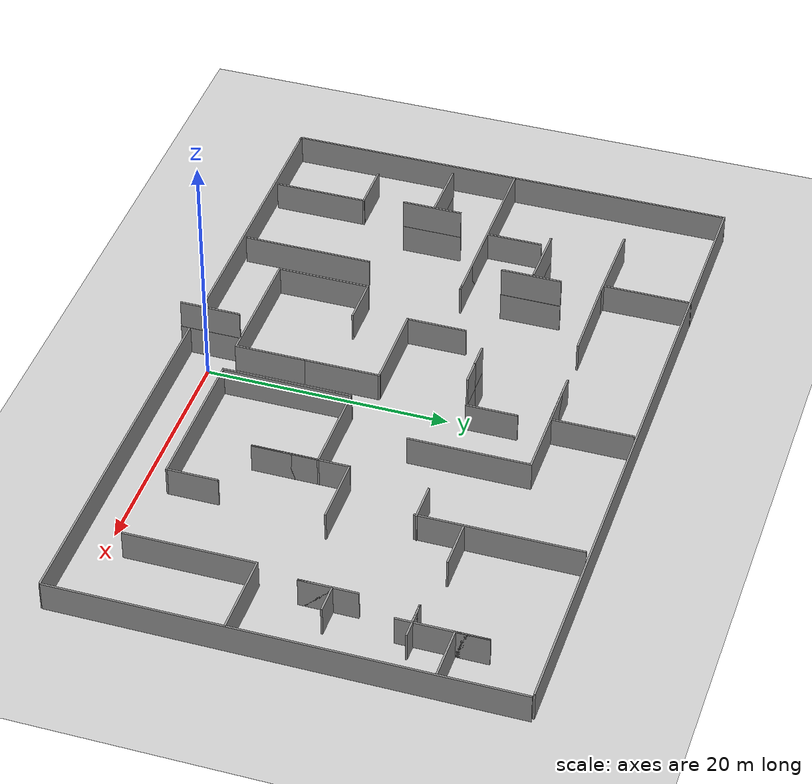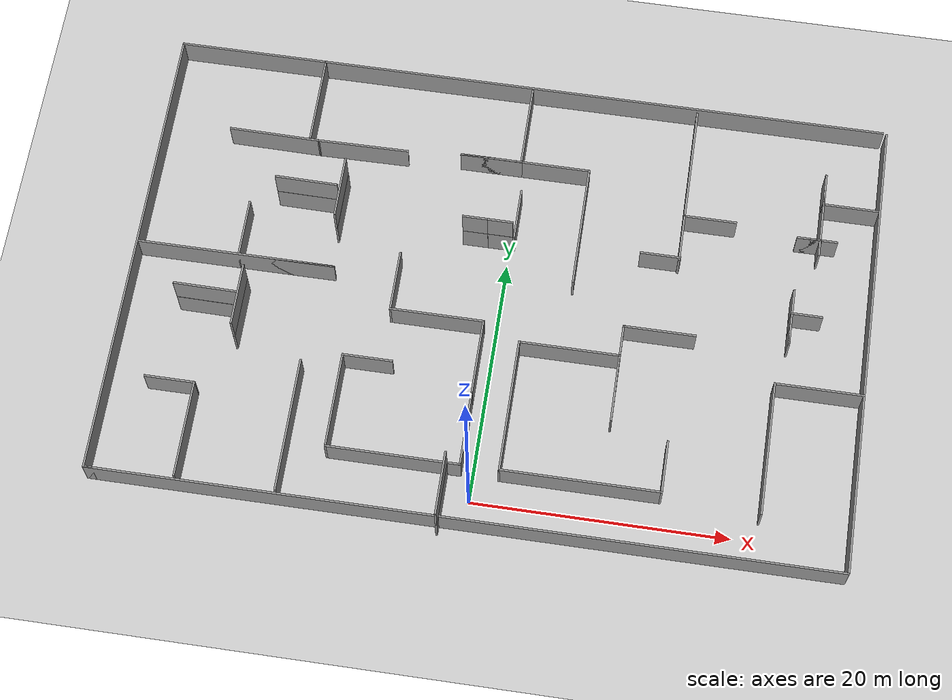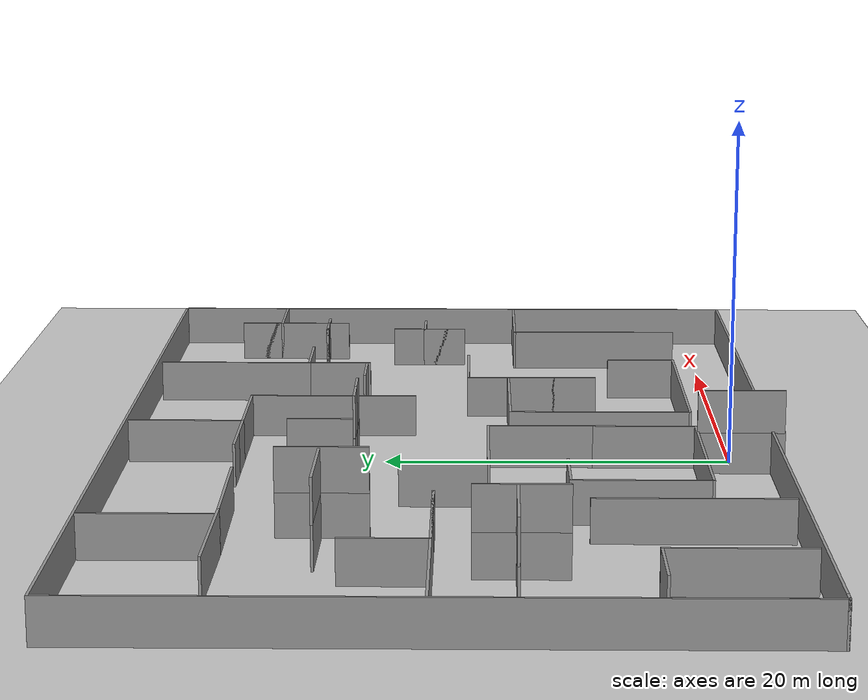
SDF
<sdf version="1.6">
 <world name="default">
  <model name="ground_plane">
   <static>1</static>
   <link name="link">
    <collision name="collision">
     <geometry><plane><normal>0 0 1</normal><size>100 100</size></plane></geometry>
     <surface><friction><ode><mu>100</mu><mu2>50</mu2></ode></friction></surface>
    </collision>
    <visual name="visual">
     <cast_shadows>0</cast_shadows>
     <geometry><plane><normal>0 0 1</normal><size>100 100</size></plane></geometry>
     <material>
      <script><uri>file://media/materials/scripts/gazebo.material</uri><name>Gazebo/Grey</name></script>
     </material>
    </visual>
   </link>
  </model>
  <model name="PaperTestRoom3">
   <pose>-0.1639 16.4774 0 0 -0 0</pose>
   <link name="Wall_12">
    <collision name="Wall_12_Collision">
     <geometry><box><size>7.36244 0.15 2.5</size></box></geometry>
     <pose>0 0 1.25 0 -0 0</pose>
    </collision>
    <visual name="Wall_12_Visual">
     <pose>0 0 1.25 0 -0 0</pose>
     <geometry><box><size>7.36244 0.15 2.5</size></box></geometry>
     <material>
      <script><uri>file://media/materials/scripts/gazebo.material</uri><name>Gazebo/Grey</name></script>
      <ambient>1 1 1 1</ambient>
     </material>
     <meta><layer>0</layer></meta>
    </visual>
    <pose>-19.953 11.4259 0 0 -0 -0.011282</pose>
   </link>
   <link name="Wall_16">
    <collision name="Wall_16_Collision">
     <geometry><box><size>7.75 0.15 2.5</size></box></geometry>
     <pose>0 0 1.25 0 -0 0</pose>
    </collision>
    <visual name="Wall_16_Visual">
     <pose>0 0 1.25 0 -0 0</pose>
     <geometry><box><size>7.75 0.15 2.5</size></box></geometry>
     <material>
      <script><uri>file://media/materials/scripts/gazebo.material</uri><name>Gazebo/Grey</name></script>
      <ambient>1 1 1 1</ambient>
     </material>
     <meta><layer>0</layer></meta>
    </visual>
    <pose>-22.0524 -14.5421 0 0 -0 1.5708</pose>
   </link>
   <link name="Wall_17">
    <collision name="Wall_17_Collision">
     <geometry><box><size>4 0.15 2.5</size></box></geometry>
     <pose>0 0 1.25 0 -0 0</pose>
    </collision>
    <visual name="Wall_17_Visual">
     <pose>0 0 1.25 0 -0 0</pose>
     <geometry><box><size>4 0.15 2.5</size></box></geometry>
     <material>
      <script><uri>file://media/materials/scripts/gazebo.material</uri><name>Gazebo/Grey</name></script>
      <ambient>1 1 1 1</ambient>
     </material>
     <meta><layer>0</layer></meta>
    </visual>
    <pose>-23.9774 -10.7421 0 0 -0 3.14159</pose>
   </link>
   <link name="Wall_19">
    <collision name="Wall_19_Collision">
     <geometry><box><size>10.75 0.15 2.5</size></box></geometry>
     <pose>0 0 1.25 0 -0 0</pose>
    </collision>
    <visual name="Wall_19_Visual">
     <pose>0 0 1.25 0 -0 0</pose>
     <geometry><box><size>10.75 0.15 2.5</size></box></geometry>
     <material>
      <script><uri>file://media/materials/scripts/gazebo.material</uri><name>Gazebo/Grey</name></script>
      <ambient>1 1 1 1</ambient>
     </material>
     <meta><layer>0</layer></meta>
    </visual>
    <pose>-14.3043 -13.0421 0 0 -0 1.5708</pose>
   </link>
   <link name="Wall_25">
    <collision name="Wall_25_Collision">
     <geometry><box><size>6 0.15 2.5</size></box></geometry>
     <pose>0 0 1.25 0 -0 0</pose>
    </collision>
    <visual name="Wall_25_Visual">
     <pose>0 0 1.25 0 -0 0</pose>
     <geometry><box><size>6 0.15 2.5</size></box></geometry>
     <material>
      <script><uri>file://media/materials/scripts/gazebo.material</uri><name>Gazebo/Grey</name></script>
      <ambient>1 1 1 1</ambient>
     </material>
     <meta><layer>0</layer></meta>
    </visual>
    <pose>-0.831101 -11.457 0 0 -0 1.5708</pose>
   </link>
   <link name="Wall_28">
    <collision name="Wall_28_Collision">
     <geometry><box><size>10.75 0.15 2.5</size></box></geometry>
     <pose>0 0 1.25 0 -0 0</pose>
    </collision>
    <visual name="Wall_28_Visual">
     <pose>0 0 1.25 0 -0 0</pose>
     <geometry><box><size>10.75 0.15 2.5</size></box></geometry>
     <material>
      <script><uri>file://media/materials/scripts/gazebo.material</uri><name>Gazebo/Grey</name></script>
      <ambient>1 1 1 1</ambient>
     </material>
     <meta><layer>0</layer></meta>
    </visual>
    <pose>2.16043 -9.0604 0 0 -0 1.5708</pose>
   </link>
   <link name="Wall_29">
    <collision name="Wall_29_Collision">
     <geometry><box><size>8 0.15 2.5</size></box></geometry>
     <pose>0 0 1.25 0 -0 0</pose>
    </collision>
    <visual name="Wall_29_Visual">
     <pose>0 0 1.25 0 -0 0</pose>
     <geometry><box><size>8 0.15 2.5</size></box></geometry>
     <material>
      <script><uri>file://media/materials/scripts/gazebo.material</uri><name>Gazebo/Grey</name></script>
      <ambient>1 1 1 1</ambient>
     </material>
     <meta><layer>0</layer></meta>
    </visual>
    <pose>6.08543 -3.7604 0 0 -0 0</pose>
   </link>
   <link name="Wall_30">
    <collision name="Wall_30_Collision">
     <geometry><box><size>5.5 0.15 2.5</size></box></geometry>
     <pose>0 0 1.25 0 -0 0</pose>
    </collision>
    <visual name="Wall_30_Visual">
     <pose>0 0 1.25 0 -0 0</pose>
     <geometry><box><size>5.5 0.15 2.5</size></box></geometry>
     <material>
      <script><uri>file://media/materials/scripts/gazebo.material</uri><name>Gazebo/Grey</name></script>
      <ambient>1 1 1 1</ambient>
     </material>
     <meta><layer>0</layer></meta>
    </visual>
    <pose>10.0104 -6.4354 0 0 -0 -1.5708</pose>
   </link>
   <link name="Wall_31">
    <collision name="Wall_31_Collision">
     <geometry><box><size>8 0.15 2.5</size></box></geometry>
     <pose>0 0 1.25 0 -0 0</pose>
    </collision>
    <visual name="Wall_31_Visual">
     <pose>0 0 1.25 0 -0 0</pose>
     <geometry><box><size>8 0.15 2.5</size></box></geometry>
     <material>
      <script><uri>file://media/materials/scripts/gazebo.material</uri><name>Gazebo/Grey</name></script>
      <ambient>1 1 1 1</ambient>
     </material>
     <meta><layer>0</layer></meta>
    </visual>
    <pose>10.0104 -5.1854 0 0 -0 1.5708</pose>
   </link>
   <link name="Wall_32">
    <collision name="Wall_32_Collision">
     <geometry><box><size>5.75 0.15 2.5</size></box></geometry>
     <pose>0 0 1.25 0 -0 0</pose>
    </collision>
    <visual name="Wall_32_Visual">
     <pose>0 0 1.25 0 -0 0</pose>
     <geometry><box><size>5.75 0.15 2.5</size></box></geometry>
     <material>
      <script><uri>file://media/materials/scripts/gazebo.material</uri><name>Gazebo/Grey</name></script>
      <ambient>1 1 1 1</ambient>
     </material>
     <meta><layer>0</layer></meta>
    </visual>
    <pose>12.8104 -1.2604 0 0 -0 0</pose>
   </link>
   <link name="Wall_34">
    <collision name="Wall_34_Collision">
     <geometry><box><size>12.5 0.15 2.5</size></box></geometry>
     <pose>0 0 1.25 0 -0 0</pose>
    </collision>
    <visual name="Wall_34_Visual">
     <pose>0 0 1.25 0 -0 0</pose>
     <geometry><box><size>12.5 0.15 2.5</size></box></geometry>
     <material>
      <script><uri>file://media/materials/scripts/gazebo.material</uri><name>Gazebo/Grey</name></script>
      <ambient>1 1 1 1</ambient>
     </material>
     <meta><layer>0</layer></meta>
    </visual>
    <pose>8.33543 -14.3604 0 0 -0 0</pose>
   </link>
   <link name="Wall_35">
    <collision name="Wall_35_Collision">
     <geometry><box><size>4.25 0.15 2.5</size></box></geometry>
     <pose>0 0 1.25 0 -0 0</pose>
    </collision>
    <visual name="Wall_35_Visual">
     <pose>0 0 1.25 0 -0 0</pose>
     <geometry><box><size>4.25 0.15 2.5</size></box></geometry>
     <material>
      <script><uri>file://media/materials/scripts/gazebo.material</uri><name>Gazebo/Grey</name></script>
      <ambient>1 1 1 1</ambient>
     </material>
     <meta><layer>0</layer></meta>
    </visual>
    <pose>14.5104 -12.3104 0 0 -0 1.5708</pose>
   </link>
   <link name="Wall_37">
    <collision name="Wall_37_Collision">
     <geometry><box><size>10.5 0.15 2.5</size></box></geometry>
     <pose>0 0 1.25 0 -0 0</pose>
    </collision>
    <visual name="Wall_37_Visual">
     <pose>0 0 1.25 0 -0 0</pose>
     <geometry><box><size>10.5 0.15 2.5</size></box></geometry>
     <material>
      <script><uri>file://media/materials/scripts/gazebo.material</uri><name>Gazebo/Grey</name></script>
      <ambient>1 1 1 1</ambient>
     </material>
     <meta><layer>0</layer></meta>
    </visual>
    <pose>-6.0061 -14.382 0 0 -0 3.14159</pose>
   </link>
   <link name="Wall_38">
    <collision name="Wall_38_Collision">
     <geometry><box><size>7.75 0.15 2.5</size></box></geometry>
     <pose>0 0 1.25 0 -0 0</pose>
    </collision>
    <visual name="Wall_38_Visual">
     <pose>0 0 1.25 0 -0 0</pose>
     <geometry><box><size>7.75 0.15 2.5</size></box></geometry>
     <material>
      <script><uri>file://media/materials/scripts/gazebo.material</uri><name>Gazebo/Grey</name></script>
      <ambient>1 1 1 1</ambient>
     </material>
     <meta><layer>0</layer></meta>
    </visual>
    <pose>-11.1811 -10.582 0 0 -0 1.5708</pose>
   </link>
   <link name="Wall_39">
    <collision name="Wall_39_Collision">
     <geometry><box><size>4 0.15 2.5</size></box></geometry>
     <pose>0 0 1.25 0 -0 0</pose>
    </collision>
    <visual name="Wall_39_Visual">
     <pose>0 0 1.25 0 -0 0</pose>
     <geometry><box><size>4 0.15 2.5</size></box></geometry>
     <material>
      <script><uri>file://media/materials/scripts/gazebo.material</uri><name>Gazebo/Grey</name></script>
      <ambient>1 1 1 1</ambient>
     </material>
     <meta><layer>0</layer></meta>
    </visual>
    <pose>-9.2561 -6.78202 0 0 -0 0</pose>
   </link>
   <link name="Wall_42">
    <collision name="Wall_42_Collision">
     <geometry><box><size>6.25 0.15 2.5</size></box></geometry>
     <pose>0 0 1.25 0 -0 0</pose>
    </collision>
    <visual name="Wall_42_Visual">
     <pose>0 0 1.25 0 -0 0</pose>
     <geometry><box><size>6.25 0.15 2.5</size></box></geometry>
     <material>
      <script><uri>file://media/materials/scripts/gazebo.material</uri><name>Gazebo/Grey</name></script>
      <ambient>1 1 1 1</ambient>
     </material>
     <meta><layer>0</layer></meta>
    </visual>
    <pose>-0.831101 -5.48202 0 0 -0 1.5708</pose>
   </link>
   <link name="Wall_43">
    <collision name="Wall_43_Collision">
     <geometry><box><size>7.5 0.15 2.5</size></box></geometry>
     <pose>0 0 1.25 0 -0 0</pose>
    </collision>
    <visual name="Wall_43_Visual">
     <pose>0 0 1.25 0 -0 0</pose>
     <geometry><box><size>7.5 0.15 2.5</size></box></geometry>
     <material>
      <script><uri>file://media/materials/scripts/gazebo.material</uri><name>Gazebo/Grey</name></script>
      <ambient>1 1 1 1</ambient>
     </material>
     <meta><layer>0</layer></meta>
    </visual>
    <pose>-4.5061 -2.43202 0 0 -0 3.14159</pose>
   </link>
   <link name="Wall_44">
    <collision name="Wall_44_Collision">
     <geometry><box><size>5 0.15 2.5</size></box></geometry>
     <pose>0 0 1.25 0 -0 0</pose>
    </collision>
    <visual name="Wall_44_Visual">
     <pose>0 0 1.25 0 -0 0</pose>
     <geometry><box><size>5 0.15 2.5</size></box></geometry>
     <material>
      <script><uri>file://media/materials/scripts/gazebo.material</uri><name>Gazebo/Grey</name></script>
      <ambient>1 1 1 1</ambient>
     </material>
     <meta><layer>0</layer></meta>
    </visual>
    <pose>-8.1811 -0.007024 0 0 -0 1.5708</pose>
   </link>
   <link name="Wall_47">
    <collision name="Wall_47_Collision">
     <geometry><box><size>37.25 0.15 2.5</size></box></geometry>
     <pose>0 0 1.25 0 -0 0</pose>
    </collision>
    <visual name="Wall_47_Visual">
     <pose>0 0 1.25 0 -0 0</pose>
     <geometry><box><size>37.25 0.15 2.5</size></box></geometry>
     <material>
      <script><uri>file://media/materials/scripts/gazebo.material</uri><name>Gazebo/Grey</name></script>
      <ambient>1 1 1 1</ambient>
     </material>
     <meta><layer>0</layer></meta>
    </visual>
    <pose>28.9541 -0.022609 0 0 -0 1.5708</pose>
   </link>
   <link name="Wall_49">
    <collision name="Wall_49_Collision">
     <geometry><box><size>7 0.15 2.5</size></box></geometry>
     <pose>0 0 1.25 0 -0 0</pose>
    </collision>
    <visual name="Wall_49_Visual">
     <pose>0 0 1.25 0 -0 0</pose>
     <geometry><box><size>7 0.15 2.5</size></box></geometry>
     <material>
      <script><uri>file://media/materials/scripts/gazebo.material</uri><name>Gazebo/Grey</name></script>
      <ambient>1 1 1 1</ambient>
     </material>
     <meta><layer>0</layer></meta>
    </visual>
    <pose>25.5161 -4.34601 0 0 -0 3.14159</pose>
   </link>
   <link name="Wall_5">
    <collision name="Wall_5_Collision">
     <geometry><box><size>0.75 0.15 2.5</size></box></geometry>
     <pose>0 0 1.25 0 -0 0</pose>
    </collision>
    <visual name="Wall_5_Visual">
     <pose>0 0 1.25 0 -0 0</pose>
     <geometry><box><size>0.75 0.15 2.5</size></box></geometry>
     <material>
      <script><uri>file://media/materials/scripts/gazebo.material</uri><name>Gazebo/Grey</name></script>
      <ambient>1 1 1 1</ambient>
     </material>
     <meta><layer>0</layer></meta>
    </visual>
    <pose>-28.6541 -18.6782 0 0 -0 3.14159</pose>
   </link>
   <link name="Wall_50">
    <collision name="Wall_50_Collision">
     <geometry><box><size>10.75 0.15 2.5</size></box></geometry>
     <pose>0 0 1.25 0 -0 0</pose>
    </collision>
    <visual name="Wall_50_Visual">
     <pose>0 0 1.25 0 -0 0</pose>
     <geometry><box><size>10.75 0.15 2.5</size></box></geometry>
     <material>
      <script><uri>file://media/materials/scripts/gazebo.material</uri><name>Gazebo/Grey</name></script>
      <ambient>1 1 1 1</ambient>
     </material>
     <meta><layer>0</layer></meta>
    </visual>
    <pose>22.0911 -9.64601 0 0 -0 -1.5708</pose>
   </link>
   <link name="Wall_52">
    <collision name="Wall_52_Collision">
     <geometry><box><size>4.5 0.15 2.5</size></box></geometry>
     <pose>0 0 1.25 0 -0 0</pose>
    </collision>
    <visual name="Wall_52_Visual">
     <pose>0 0 1.25 0 -0 0</pose>
     <geometry><box><size>4.5 0.15 2.5</size></box></geometry>
     <material>
      <script><uri>file://media/materials/scripts/gazebo.material</uri><name>Gazebo/Grey</name></script>
      <ambient>1 1 1 1</ambient>
     </material>
     <meta><layer>0</layer></meta>
    </visual>
    <pose>26.6525 11.5563 0 0 -0 3.14159</pose>
   </link>
   <link name="Wall_53">
    <collision name="Wall_53_Collision">
     <geometry><box><size>2.75 0.15 2.5</size></box></geometry>
     <pose>0 0 1.25 0 -0 0</pose>
    </collision>
    <visual name="Wall_53_Visual">
     <pose>0 0 1.25 0 -0 0</pose>
     <geometry><box><size>2.75 0.15 2.5</size></box></geometry>
     <material>
      <script><uri>file://media/materials/scripts/gazebo.material</uri><name>Gazebo/Grey</name></script>
      <ambient>1 1 1 1</ambient>
     </material>
     <meta><layer>0</layer></meta>
    </visual>
    <pose>24.4775 12.8563 0 0 -0 1.5708</pose>
   </link>
   <link name="Wall_54">
    <collision name="Wall_54_Collision">
     <geometry><box><size>7.25 0.15 2.5</size></box></geometry>
     <pose>0 0 1.25 0 -0 0</pose>
    </collision>
    <visual name="Wall_54_Visual">
     <pose>0 0 1.25 0 -0 0</pose>
     <geometry><box><size>7.25 0.15 2.5</size></box></geometry>
     <material>
      <script><uri>file://media/materials/scripts/gazebo.material</uri><name>Gazebo/Grey</name></script>
      <ambient>1 1 1 1</ambient>
     </material>
     <meta><layer>0</layer></meta>
    </visual>
    <pose>24.4775 10.6063 0 0 -0 -1.5708</pose>
   </link>
   <link name="Wall_57">
    <collision name="Wall_57_Collision">
     <geometry><box><size>2 0.15 2.5</size></box></geometry>
     <pose>0 0 1.25 0 -0 0</pose>
    </collision>
    <visual name="Wall_57_Visual">
     <pose>0 0 1.25 0 -0 0</pose>
     <geometry><box><size>2 0.15 2.5</size></box></geometry>
     <material>
      <script><uri>file://media/materials/scripts/gazebo.material</uri><name>Gazebo/Grey</name></script>
      <ambient>1 1 1 1</ambient>
     </material>
     <meta><layer>0</layer></meta>
    </visual>
    <pose>23.6283 8.34759 0 0 -0 3.14159</pose>
   </link>
   <link name="Wall_58">
    <collision name="Wall_58_Collision">
     <geometry><box><size>3.25 0.15 2.5</size></box></geometry>
     <pose>0 0 1.25 0 -0 0</pose>
    </collision>
    <visual name="Wall_58_Visual">
     <pose>0 0 1.25 0 -0 0</pose>
     <geometry><box><size>3.25 0.15 2.5</size></box></geometry>
     <material>
      <script><uri>file://media/materials/scripts/gazebo.material</uri><name>Gazebo/Grey</name></script>
      <ambient>1 1 1 1</ambient>
     </material>
     <meta><layer>0</layer></meta>
    </visual>
    <pose>24.2533 8.34759 0 0 -0 0</pose>
   </link>
   <link name="Wall_6">
    <collision name="Wall_6_Collision">
     <geometry><box><size>37.5 0.15 2.5</size></box></geometry>
     <pose>0 0 1.25 0 -0 0</pose>
    </collision>
    <visual name="Wall_6_Visual">
     <pose>0 0 1.25 0 -0 0</pose>
     <geometry><box><size>37.5 0.15 2.5</size></box></geometry>
     <material>
      <script><uri>file://media/materials/scripts/gazebo.material</uri><name>Gazebo/Grey</name></script>
      <ambient>1 1 1 1</ambient>
     </material>
     <meta><layer>0</layer></meta>
    </visual>
    <pose>-28.9541 -0.003198 0 0 -0 1.5708</pose>
   </link>
   <link name="Wall_60">
    <collision name="Wall_60_Collision">
     <geometry><box><size>9.5 0.15 2.5</size></box></geometry>
     <pose>0 0 1.25 0 -0 0</pose>
    </collision>
    <visual name="Wall_60_Visual">
     <pose>0 0 1.25 0 -0 0</pose>
     <geometry><box><size>9.5 0.15 2.5</size></box></geometry>
     <material>
      <script><uri>file://media/materials/scripts/gazebo.material</uri><name>Gazebo/Grey</name></script>
      <ambient>1 1 1 1</ambient>
     </material>
     <meta><layer>0</layer></meta>
    </visual>
    <pose>13.6263 13.5981 0 0 -0 -1.5708</pose>
   </link>
   <link name="Wall_61">
    <collision name="Wall_61_Collision">
     <geometry><box><size>4.25 0.15 2.5</size></box></geometry>
     <pose>0 0 1.25 0 -0 0</pose>
    </collision>
    <visual name="Wall_61_Visual">
     <pose>0 0 1.25 0 -0 0</pose>
     <geometry><box><size>4.25 0.15 2.5</size></box></geometry>
     <material>
      <script><uri>file://media/materials/scripts/gazebo.material</uri><name>Gazebo/Grey</name></script>
      <ambient>1 1 1 1</ambient>
     </material>
     <meta><layer>0</layer></meta>
    </visual>
    <pose>15.6763 8.92306 0 0 -0 0</pose>
   </link>
   <link name="Wall_64">
    <collision name="Wall_64_Collision">
     <geometry><box><size>6.75 0.15 2.5</size></box></geometry>
     <pose>0 0 1.25 0 -0 0</pose>
    </collision>
    <visual name="Wall_64_Visual">
     <pose>0 0 1.25 0 -0 0</pose>
     <geometry><box><size>6.75 0.15 2.5</size></box></geometry>
     <material>
      <script><uri>file://media/materials/scripts/gazebo.material</uri><name>Gazebo/Grey</name></script>
      <ambient>1 1 1 1</ambient>
     </material>
     <meta><layer>0</layer></meta>
    </visual>
    <pose>0.10616 15.1154 0 0 -0 -1.5708</pose>
   </link>
   <link name="Wall_65">
    <collision name="Wall_65_Collision">
     <geometry><box><size>5 0.15 2.5</size></box></geometry>
     <pose>0 0 1.25 0 -0 0</pose>
    </collision>
    <visual name="Wall_65_Visual">
     <pose>0 0 1.25 0 -0 0</pose>
     <geometry><box><size>5 0.15 2.5</size></box></geometry>
     <material>
      <script><uri>file://media/materials/scripts/gazebo.material</uri><name>Gazebo/Grey</name></script>
      <ambient>1 1 1 1</ambient>
     </material>
     <meta><layer>0</layer></meta>
    </visual>
    <pose>-2.31884 11.8154 0 0 -0 3.14159</pose>
   </link>
   <link name="Wall_66">
    <collision name="Wall_66_Collision">
     <geometry><box><size>10.5 0.15 2.5</size></box></geometry>
     <pose>0 0 1.25 0 -0 0</pose>
    </collision>
    <visual name="Wall_66_Visual">
     <pose>0 0 1.25 0 -0 0</pose>
     <geometry><box><size>10.5 0.15 2.5</size></box></geometry>
     <material>
      <script><uri>file://media/materials/scripts/gazebo.material</uri><name>Gazebo/Grey</name></script>
      <ambient>1 1 1 1</ambient>
     </material>
     <meta><layer>0</layer></meta>
    </visual>
    <pose>0.431161 11.8154 0 0 -0 0</pose>
   </link>
   <link name="Wall_67">
    <collision name="Wall_67_Collision">
     <geometry><box><size>10 0.15 2.5</size></box></geometry>
     <pose>0 0 1.25 0 -0 0</pose>
    </collision>
    <visual name="Wall_67_Visual">
     <pose>0 0 1.25 0 -0 0</pose>
     <geometry><box><size>10 0.15 2.5</size></box></geometry>
     <material>
      <script><uri>file://media/materials/scripts/gazebo.material</uri><name>Gazebo/Grey</name></script>
      <ambient>1 1 1 1</ambient>
     </material>
     <meta><layer>0</layer></meta>
    </visual>
    <pose>5.60616 6.89038 0 0 -0 -1.5708</pose>
   </link>
   <link name="Wall_69">
    <collision name="Wall_69_Collision">
     <geometry><box><size>15.75 0.15 2.5</size></box></geometry>
     <pose>0 0 1.25 0 -0 0</pose>
    </collision>
    <visual name="Wall_69_Visual">
     <pose>0 0 1.25 0 -0 0</pose>
     <geometry><box><size>15.75 0.15 2.5</size></box></geometry>
     <material>
      <script><uri>file://media/materials/scripts/gazebo.material</uri><name>Gazebo/Grey</name></script>
      <ambient>1 1 1 1</ambient>
     </material>
     <meta><layer>0</layer></meta>
    </visual>
    <pose>-20.9843 0.483346 0 0 -0 0</pose>
   </link>
   <link name="Wall_70">
    <collision name="Wall_70_Collision">
     <geometry><box><size>7.75 0.15 2.5</size></box></geometry>
     <pose>0 0 1.25 0 -0 0</pose>
    </collision>
    <visual name="Wall_70_Visual">
     <pose>0 0 1.25 0 -0 0</pose>
     <geometry><box><size>7.75 0.15 2.5</size></box></geometry>
     <material>
      <script><uri>file://media/materials/scripts/gazebo.material</uri><name>Gazebo/Grey</name></script>
      <ambient>1 1 1 1</ambient>
     </material>
     <meta><layer>0</layer></meta>
    </visual>
    <pose>-16.9843 0.483346 0 0 -0 3.14159</pose>
   </link>
   <link name="Wall_71">
    <collision name="Wall_71_Collision">
     <geometry><box><size>4.75 0.15 2.5</size></box></geometry>
     <pose>0 0 1.25 0 -0 0</pose>
    </collision>
    <visual name="Wall_71_Visual">
     <pose>0 0 1.25 0 -0 0</pose>
     <geometry><box><size>4.75 0.15 2.5</size></box></geometry>
     <material>
      <script><uri>file://media/materials/scripts/gazebo.material</uri><name>Gazebo/Grey</name></script>
      <ambient>1 1 1 1</ambient>
     </material>
     <meta><layer>0</layer></meta>
    </visual>
    <pose>-20.7843 2.78335 0 0 -0 1.5708</pose>
   </link>
   <link name="Wall_73">
    <collision name="Wall_73_Collision">
     <geometry><box><size>58 0.15 2.5</size></box></geometry>
     <pose>0 0 1.25 0 -0 0</pose>
    </collision>
    <visual name="Wall_73_Visual">
     <pose>0 0 1.25 0 -0 0</pose>
     <geometry><box><size>58 0.15 2.5</size></box></geometry>
     <material>
      <script><uri>file://media/materials/scripts/gazebo.material</uri><name>Gazebo/Grey</name></script>
      <ambient>1 1 1 1</ambient>
     </material>
     <meta><layer>0</layer></meta>
    </visual>
    <pose>-0.029105 -18.6782 0 0 -0 0</pose>
   </link>
   <link name="Wall_75">
    <collision name="Wall_75_Collision">
     <geometry><box><size>57.75 0.15 2.5</size></box></geometry>
     <pose>0 0 1.25 0 -0 0</pose>
    </collision>
    <visual name="Wall_75_Visual">
     <pose>0 0 1.25 0 -0 0</pose>
     <geometry><box><size>57.75 0.15 2.5</size></box></geometry>
     <material>
      <script><uri>file://media/materials/scripts/gazebo.material</uri><name>Gazebo/Grey</name></script>
      <ambient>1 1 1 1</ambient>
     </material>
     <meta><layer>0</layer></meta>
    </visual>
    <pose>-0.154105 18.6718 0 0 -0 0</pose>
   </link>
   <link name="Wall_77">
    <collision name="Wall_77_Collision">
     <geometry><box><size>7.38848 0.15 2.5</size></box></geometry>
     <pose>0 0 1.25 0 -0 0</pose>
    </collision>
    <visual name="Wall_77_Visual">
     <pose>0 0 1.25 0 -0 0</pose>
     <geometry><box><size>7.38848 0.15 2.5</size></box></geometry>
     <material>
      <script><uri>file://media/materials/scripts/gazebo.material</uri><name>Gazebo/Grey</name></script>
      <ambient>1 1 1 1</ambient>
     </material>
     <meta><layer>0</layer></meta>
    </visual>
    <pose>-12.728 11.4259 0 0 -0 0.011242</pose>
   </link>
   <link name="Wall_79">
    <collision name="Wall_79_Collision">
     <geometry><box><size>7.25 0.15 2.5</size></box></geometry>
     <pose>0 0 1.25 0 -0 0</pose>
    </collision>
    <visual name="Wall_79_Visual">
     <pose>0 0 1.25 0 -0 0</pose>
     <geometry><box><size>7.25 0.15 2.5</size></box></geometry>
     <material>
      <script><uri>file://media/materials/scripts/gazebo.material</uri><name>Gazebo/Grey</name></script>
      <ambient>1 1 1 1</ambient>
     </material>
     <meta><layer>0</layer></meta>
    </visual>
    <pose>-17.0746 15.1282 0 0 -0 1.5708</pose>
   </link>
   <link name="Wall_83">
    <collision name="Wall_83_Collision">
     <geometry><box><size>4.25 0.15 2.5</size></box></geometry>
     <pose>0 0 1.25 0 -0 0</pose>
    </collision>
    <visual name="Wall_83_Visual">
     <pose>0 0 1.25 0 -0 0</pose>
     <geometry><box><size>4.25 0.15 2.5</size></box></geometry>
     <material>
      <script><uri>file://media/materials/scripts/gazebo.material</uri><name>Gazebo/Grey</name></script>
      <ambient>1 1 1 1</ambient>
     </material>
     <meta><layer>0</layer></meta>
    </visual>
    <pose>0.487926 7.17144 0 0 -0 1.5708</pose>
   </link>
   <link name="Wall_85">
    <collision name="Wall_85_Collision">
     <geometry><box><size>4.75 0.15 2.5</size></box></geometry>
     <pose>0 0 1.25 0 -0 0</pose>
    </collision>
    <visual name="Wall_85_Visual">
     <pose>0 0 1.25 0 -0 0</pose>
     <geometry><box><size>4.75 0.15 2.5</size></box></geometry>
     <material>
      <script><uri>file://media/materials/scripts/gazebo.material</uri><name>Gazebo/Grey</name></script>
      <ambient>1 1 1 1</ambient>
     </material>
     <meta><layer>0</layer></meta>
    </visual>
    <pose>22.8497 1.42247 0 0 -0 -1.5708</pose>
   </link>
   <link name="Wall_86">
    <collision name="Wall_86_Collision">
     <geometry><box><size>2.75 0.15 2.5</size></box></geometry>
     <pose>0 0 1.25 0 -0 0</pose>
    </collision>
    <visual name="Wall_86_Visual">
     <pose>0 0 1.25 0 -0 0</pose>
     <geometry><box><size>2.75 0.15 2.5</size></box></geometry>
     <material>
      <script><uri>file://media/materials/scripts/gazebo.material</uri><name>Gazebo/Grey</name></script>
      <ambient>1 1 1 1</ambient>
     </material>
     <meta><layer>0</layer></meta>
    </visual>
    <pose>22.8497 0.422475 0 0 -0 1.5708</pose>
   </link>
   <link name="Wall_87">
    <collision name="Wall_87_Collision">
     <geometry><box><size>2.5 0.15 2.5</size></box></geometry>
     <pose>0 0 1.25 0 -0 0</pose>
    </collision>
    <visual name="Wall_87_Visual">
     <pose>0 0 1.25 0 -0 0</pose>
     <geometry><box><size>2.5 0.15 2.5</size></box></geometry>
     <material>
      <script><uri>file://media/materials/scripts/gazebo.material</uri><name>Gazebo/Grey</name></script>
      <ambient>1 1 1 1</ambient>
     </material>
     <meta><layer>0</layer></meta>
    </visual>
    <pose>24.0247 1.72248 0 0 -0 0</pose>
   </link>
   <link name="Wall_89">
    <collision name="Wall_89_Collision">
     <geometry><box><size>4 0.15 2.5</size></box></geometry>
     <pose>0 0 1.25 0 -0 0</pose>
    </collision>
    <visual name="Wall_89_Visual">
     <pose>0 0 1.25 0 -0 0</pose>
     <geometry><box><size>4 0.15 2.5</size></box></geometry>
     <material>
      <script><uri>file://media/materials/scripts/gazebo.material</uri><name>Gazebo/Grey</name></script>
      <ambient>1 1 1 1</ambient>
     </material>
     <meta><layer>0</layer></meta>
    </visual>
    <pose>13.6263 6.99806 0 0 -0 -1.5708</pose>
   </link>
   <link name="Wall_91">
    <collision name="Wall_91_Collision">
     <geometry><box><size>3.25 0.15 2.5</size></box></geometry>
     <pose>0 0 1.25 0 -0 0</pose>
    </collision>
    <visual name="Wall_91_Visual">
     <pose>0 0 1.25 0 -0 0</pose>
     <geometry><box><size>3.25 0.15 2.5</size></box></geometry>
     <material>
      <script><uri>file://media/materials/scripts/gazebo.material</uri><name>Gazebo/Grey</name></script>
      <ambient>1 1 1 1</ambient>
     </material>
     <meta><layer>0</layer></meta>
    </visual>
    <pose>12.1319 5.22905 0 0 -0 0</pose>
   </link>
   <static>1</static>
  </model>
  <model name="5mWall">
   <pose>-16.4333 22.9104 2.46833 0 -0 1.56041</pose>
   <link name="Wall_0">
    <collision name="Wall_0_Collision">
     <geometry><box><size>5 0.15 2.5</size></box></geometry>
     <pose>0 0 1.25 0 -0 0</pose>
    </collision>
    <visual name="Wall_0_Visual">
     <pose>0 0 1.25 0 -0 0</pose>
     <geometry><box><size>5 0.15 2.5</size></box></geometry>
     <material>
      <script><uri>file://media/materials/scripts/gazebo.material</uri><name>Gazebo/Grey</name></script>
      <ambient>1 1 1 1</ambient>
     </material>
     <meta><layer>0</layer></meta>
    </visual>
    <pose>0 -0 0 0 -0 1.5708</pose>
   </link>
   <static>1</static>
  </model>
  <model name="5mWall_0">
   <pose>-13.7019 22.7697 2.48433 0 -0 0</pose>
   <link name="Wall_0">
    <collision name="Wall_0_Collision">
     <geometry><box><size>5 0.15 2.5</size></box></geometry>
     <pose>0 0 1.25 0 -0 0</pose>
    </collision>
    <visual name="Wall_0_Visual">
     <pose>0 0 1.25 0 -0 0</pose>
     <geometry><box><size>5 0.15 2.5</size></box></geometry>
     <material>
      <script><uri>file://media/materials/scripts/gazebo.material</uri><name>Gazebo/Grey</name></script>
      <ambient>1 1 1 1</ambient>
     </material>
     <meta><layer>0</layer></meta>
    </visual>
    <pose>0 -0 0 0 -0 1.5708</pose>
   </link>
   <static>1</static>
  </model>
  <model name="5mWall_0_clone">
   <pose>-19.9182 12.476 2.47371 0 -0 0</pose>
   <link name="Wall_0">
    <collision name="Wall_0_Collision">
     <geometry><box><size>5 0.15 2.5</size></box></geometry>
     <pose>0 0 1.25 0 -0 0</pose>
    </collision>
    <visual name="Wall_0_Visual">
     <pose>0 0 1.25 0 -0 0</pose>
     <geometry><box><size>5 0.15 2.5</size></box></geometry>
     <material>
      <script><uri>file://media/materials/scripts/gazebo.material</uri><name>Gazebo/Grey</name></script>
      <ambient>1 1 1 1</ambient>
     </material>
     <meta><layer>0</layer></meta>
    </visual>
    <pose>0 -0 0 0 -0 1.5708</pose>
   </link>
   <static>1</static>
  </model>
  <model name="5mWall_clone">
   <pose>-22.4986 12.6897 2.46346 0 -0 1.56041</pose>
   <link name="Wall_0">
    <collision name="Wall_0_Collision">
     <geometry><box><size>5 0.15 2.5</size></box></geometry>
     <pose>0 0 1.25 0 -0 0</pose>
    </collision>
    <visual name="Wall_0_Visual">
     <pose>0 0 1.25 0 -0 0</pose>
     <geometry><box><size>5 0.15 2.5</size></box></geometry>
     <material>
      <script><uri>file://media/materials/scripts/gazebo.material</uri><name>Gazebo/Grey</name></script>
      <ambient>1 1 1 1</ambient>
     </material>
     <meta><layer>0</layer></meta>
    </visual>
    <pose>0 -0 0 0 -0 1.5708</pose>
   </link>
   <static>1</static>
  </model>
  <model name="5mWall_0_clone_0">
   <pose>-13.6787 22.7609 0 0 -0 0</pose>
   <link name="Wall_0">
    <collision name="Wall_0_Collision">
     <geometry><box><size>5 0.15 2.5</size></box></geometry>
     <pose>0 0 1.25 0 -0 0</pose>
    </collision>
    <visual name="Wall_0_Visual">
     <pose>0 0 1.25 0 -0 0</pose>
     <geometry><box><size>5 0.15 2.5</size></box></geometry>
     <material>
      <script><uri>file://media/materials/scripts/gazebo.material</uri><name>Gazebo/Grey</name></script>
      <ambient>1 1 1 1</ambient>
     </material>
     <meta><layer>0</layer></meta>
    </visual>
    <pose>0 -0 0 0 -0 1.5708</pose>
   </link>
   <static>1</static>
  </model>
  <model name="5mWall_clone_0">
   <pose>-16.4303 22.907 0 0 -0 1.56041</pose>
   <link name="Wall_0">
    <collision name="Wall_0_Collision">
     <geometry><box><size>5 0.15 2.5</size></box></geometry>
     <pose>0 0 1.25 0 -0 0</pose>
    </collision>
    <visual name="Wall_0_Visual">
     <pose>0 0 1.25 0 -0 0</pose>
     <geometry><box><size>5 0.15 2.5</size></box></geometry>
     <material>
      <script><uri>file://media/materials/scripts/gazebo.material</uri><name>Gazebo/Grey</name></script>
      <ambient>1 1 1 1</ambient>
     </material>
     <meta><layer>0</layer></meta>
    </visual>
    <pose>0 -0 0 0 -0 1.5708</pose>
   </link>
   <static>1</static>
  </model>
  <model name="5mWall_0_clone_clone">
   <pose>-19.9166 12.4682 0 0 -0 0</pose>
   <link name="Wall_0">
    <collision name="Wall_0_Collision">
     <geometry><box><size>5 0.15 2.5</size></box></geometry>
     <pose>0 0 1.25 0 -0 0</pose>
    </collision>
    <visual name="Wall_0_Visual">
     <pose>0 0 1.25 0 -0 0</pose>
     <geometry><box><size>5 0.15 2.5</size></box></geometry>
     <material>
      <script><uri>file://media/materials/scripts/gazebo.material</uri><name>Gazebo/Grey</name></script>
      <ambient>1 1 1 1</ambient>
     </material>
     <meta><layer>0</layer></meta>
    </visual>
    <pose>0 -0 0 0 -0 1.5708</pose>
   </link>
   <static>1</static>
  </model>
  <model name="5mWall_clone_clone">
   <pose>-22.4878 12.676 0 0 -0 1.56041</pose>
   <link name="Wall_0">
    <collision name="Wall_0_Collision">
     <geometry><box><size>5 0.15 2.5</size></box></geometry>
     <pose>0 0 1.25 0 -0 0</pose>
    </collision>
    <visual name="Wall_0_Visual">
     <pose>0 0 1.25 0 -0 0</pose>
     <geometry><box><size>5 0.15 2.5</size></box></geometry>
     <material>
      <script><uri>file://media/materials/scripts/gazebo.material</uri><name>Gazebo/Grey</name></script>
      <ambient>1 1 1 1</ambient>
     </material>
     <meta><layer>0</layer></meta>
    </visual>
    <pose>0 -0 0 0 -0 1.5708</pose>
   </link>
   <static>1</static>
  </model>
  <model name="2mWall">
   <pose>-2.772 21.6032 2.51079 0 -0 0</pose>
   <link name="Wall_0">
    <collision name="Wall_0_Collision">
     <geometry><box><size>2 0.15 2.5</size></box></geometry>
     <pose>0 0 1.25 0 -0 0</pose>
    </collision>
    <visual name="Wall_0_Visual">
     <pose>0 0 1.25 0 -0 0</pose>
     <geometry><box><size>2 0.15 2.5</size></box></geometry>
     <material>
      <script><uri>file://media/materials/scripts/gazebo.material</uri><name>Gazebo/Grey</name></script>
      <ambient>1 1 1 1</ambient>
     </material>
     <meta><layer>0</layer></meta>
    </visual>
   </link>
   <static>1</static>
  </model>
  <model name="2mWall_0">
   <pose>-0.769249 21.6167 2.48014 0 -0 0</pose>
   <link name="Wall_0">
    <collision name="Wall_0_Collision">
     <geometry><box><size>2 0.15 2.5</size></box></geometry>
     <pose>0 0 1.25 0 -0 0</pose>
    </collision>
    <visual name="Wall_0_Visual">
     <pose>0 0 1.25 0 -0 0</pose>
     <geometry><box><size>2 0.15 2.5</size></box></geometry>
     <material>
      <script><uri>file://media/materials/scripts/gazebo.material</uri><name>Gazebo/Grey</name></script>
      <ambient>1 1 1 1</ambient>
     </material>
     <meta><layer>0</layer></meta>
    </visual>
   </link>
   <static>1</static>
  </model>
  <model name="2mWall_clone">
   <pose>-2.77161 21.6136 0 0 -0 0</pose>
   <link name="Wall_0">
    <collision name="Wall_0_Collision">
     <geometry><box><size>2 0.15 2.5</size></box></geometry>
     <pose>0 0 1.25 0 -0 0</pose>
    </collision>
    <visual name="Wall_0_Visual">
     <pose>0 0 1.25 0 -0 0</pose>
     <geometry><box><size>2 0.15 2.5</size></box></geometry>
     <material>
      <script><uri>file://media/materials/scripts/gazebo.material</uri><name>Gazebo/Grey</name></script>
      <ambient>1 1 1 1</ambient>
     </material>
     <meta><layer>0</layer></meta>
    </visual>
   </link>
   <static>1</static>
  </model>
  <model name="2mWall_0_clone">
   <pose>-0.769776 21.6145 0 0 -0 0</pose>
   <link name="Wall_0">
    <collision name="Wall_0_Collision">
     <geometry><box><size>2 0.15 2.5</size></box></geometry>
     <pose>0 0 1.25 0 -0 0</pose>
    </collision>
    <visual name="Wall_0_Visual">
     <pose>0 0 1.25 0 -0 0</pose>
     <geometry><box><size>2 0.15 2.5</size></box></geometry>
     <material>
      <script><uri>file://media/materials/scripts/gazebo.material</uri><name>Gazebo/Grey</name></script>
      <ambient>1 1 1 1</ambient>
     </material>
     <meta><layer>0</layer></meta>
    </visual>
   </link>
   <static>1</static>
  </model>
  <model name="5mWall_1">
   <pose>-2.03919 -0.395692 2.41368 0 -0 0</pose>
   <link name="Wall_0">
    <collision name="Wall_0_Collision">
     <geometry><box><size>5 0.15 2.5</size></box></geometry>
     <pose>0 0 1.25 0 -0 0</pose>
    </collision>
    <visual name="Wall_0_Visual">
     <pose>0 0 1.25 0 -0 0</pose>
     <geometry><box><size>5 0.15 2.5</size></box></geometry>
     <material>
      <script><uri>file://media/materials/scripts/gazebo.material</uri><name>Gazebo/Grey</name></script>
      <ambient>1 1 1 1</ambient>
     </material>
     <meta><layer>0</layer></meta>
    </visual>
    <pose>0 -0 0 0 -0 1.5708</pose>
   </link>
   <static>1</static>
  </model>
  <model name="5mWall_1_clone">
   <pose>-2.03776 -0.428865 0 0 -0 0</pose>
   <link name="Wall_0">
    <collision name="Wall_0_Collision">
     <geometry><box><size>5 0.15 2.5</size></box></geometry>
     <pose>0 0 1.25 0 -0 0</pose>
    </collision>
    <visual name="Wall_0_Visual">
     <pose>0 0 1.25 0 -0 0</pose>
     <geometry><box><size>5 0.15 2.5</size></box></geometry>
     <material>
      <script><uri>file://media/materials/scripts/gazebo.material</uri><name>Gazebo/Grey</name></script>
      <ambient>1 1 1 1</ambient>
     </material>
     <meta><layer>0</layer></meta>
    </visual>
    <pose>0 -0 0 0 -0 1.5708</pose>
   </link>
   <static>1</static>
  </model>
 </world>
</sdf>
